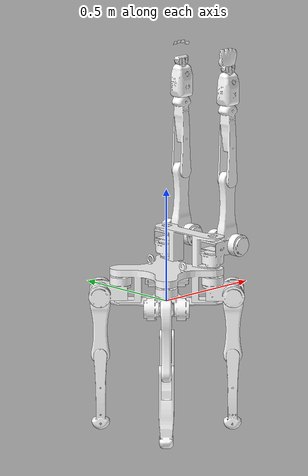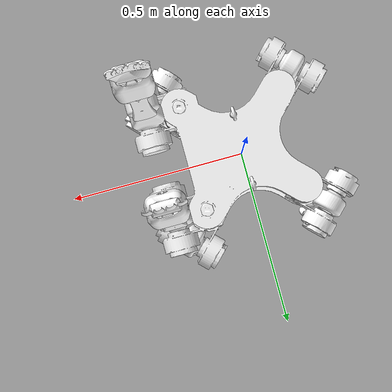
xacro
<?xml version="1.0" ?>
<robot name="moonbot01" xmlns:xacro="http://ros.org/wiki/xacro">

  <!-- include files -->
  <xacro:include filename="$(find moonbot_description)/urdf/yonaka_0722/materials.xacro"/>
  <xacro:include filename="$(find moonbot_description)/urdf/yonaka_0722/moonbot01_macro.xacro"/>

  <xacro:moonbot01/>

</robot>

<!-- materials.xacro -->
<robot name="moonbot01" xmlns:xacro="http://ros.org/wiki/xacro">

  <!-- link rviz colors -->
  <material name="White">
    <color rgba="1 1 1 1"/>
  </material>

  <material name="Black">
    <color rgba="0 0 0 1"/>
  </material>

</robot>

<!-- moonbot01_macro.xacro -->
<robot name="moonbot01" xmlns:xacro="http://ros.org/wiki/xacro">

  <xacro:macro name="moonbot01">

    <!-- include files -->
    <xacro:include filename="$(find moonbot_description)/urdf/yonaka_0722/constant.xacro" />
    <xacro:include filename="$(find moonbot_description)/urdf/yonaka_0722/common.xacro" />
    <xacro:include filename="$(find moonbot_description)/urdf/yonaka_0722/moonbot01_arm_macro.xacro" />
    <xacro:include filename="$(find moonbot_description)/urdf/yonaka_0722/moonbot01_leg_macro.xacro" />
    <xacro:include filename="$(find moonbot_description)/urdf/yonaka_0722/ros2_control.xacro" />

    <!-- base link -->
    <link name="base_link"/>

    <!-- body joint -->
    <joint name="base_to_body" type="fixed">
      <origin xyz="0 0 0" rpy="0 0 0"/>
      <parent link="base_link"/>
      <child link="body_link"/>
    </joint>
    <!-- body link -->
    <xacro:link name="body_link" material="White" mesh="BASE.STL" mass="9.0" ixx="0.01" ixy="0.01" ixz="0.01" iyy="0.01" iyz="0.401" izz="0.401"/>

    <!-- left arm joint -->
    <joint name="base_to_left_arm_base" type="fixed">
      <origin xyz="0.14142 0.14142 0.2475" rpy="0 0 0"/>
      <parent link="base_link"/>
      <child link="left_arm_base_link"/>
    </joint>
    <!-- left arm -->
    <xacro:moonbot01_arm prefix="left_"/>

    <!-- right arm joint -->
    <joint name="base_to_right_arm_base" type="fixed">
      <origin xyz="0.14142 -0.14142 0.2475" rpy="0 0 -0"/>
      <parent link="base_link"/>
      <child link="right_arm_base_link"/>
    </joint>
    <!-- right arm -->
    <xacro:moonbot01_arm prefix="right_"/>

    <!-- forward left leg joint -->
    <joint name="base_to_f_left_leg_base" type="fixed">
      <origin xyz="0.14142 0.14142 0.0395" rpy="0 0 0.7854"/>
      <parent link="base_link"/>
      <child link="f_left_leg_base_link"/>
    </joint>
    <!-- forward left leg -->
    <xacro:moonbot01_leg prefix="f_left_"/>

    <!-- forward right leg joint -->
    <joint name="base_to_f_right_leg_base" type="fixed">
      <origin xyz="0.14142 -0.14142 0.0395" rpy="0 0 -0.7854"/>
      <parent link="base_link"/>
      <child link="f_right_leg_base_link"/>
    </joint>
    <!-- forward right leg -->
    <xacro:moonbot01_leg prefix="f_right_"/>

    <!-- back left leg joint -->
    <joint name="base_to_b_left_leg_base" type="fixed">
      <origin xyz="-0.14142 0.14142 0.0395" rpy="0 0 2.3562"/>
      <parent link="base_link"/>
      <child link="b_left_leg_base_link"/>
    </joint>
    <!-- back left leg -->
    <xacro:moonbot01_leg prefix="b_left_"/>

    <!-- back right leg joint -->
    <joint name="base_to_b_right_leg_base" type="fixed">
      <origin xyz="-0.14142 -0.14142 0.0395" rpy="0 0 -2.3562"/>
      <parent link="base_link"/>
      <child link="b_right_leg_base_link"/>
    </joint>
    <!-- back right leg -->
    <xacro:moonbot01_leg prefix="b_right_"/>

  </xacro:macro>

</robot>

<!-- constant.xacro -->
<robot xmlns:xacro="http://www.ros.org/wiki/xacro">

    <!-- Constants for robot dimensions -->
    <xacro:property name="PI" value="3.1415926535897931"/>

    <!-- Arm -->
    <xacro:property name="aj1_lower_limit" value="${radians( -15)}"/>
    <xacro:property name="aj1_upper_limit" value="${radians( 180)}"/>
    <xacro:property name="aj2_lower_limit" value="${radians(-150)}"/>
    <xacro:property name="aj2_upper_limit" value="${radians( 150)}"/>
    <xacro:property name="aj3_lower_limit" value="${radians(-150)}"/>
    <xacro:property name="aj3_upper_limit" value="${radians( 150)}"/>
    <xacro:property name="aj4_lower_limit" value="${radians(-360)}"/>
    <xacro:property name="aj4_upper_limit" value="${radians( 360)}"/>
    <xacro:property name="aj5_lower_limit" value="${radians(-30)}"/>
    <xacro:property name="aj5_upper_limit" value="${radians( 30)}"/>
    <xacro:property name="aj6_lower_limit" value="${radians(-90)}"/>
    <xacro:property name="aj6_upper_limit" value="${radians( 90)}"/>

    <xacro:property name="aj1_velocity_limit" value="${radians(30)}"/>
    <xacro:property name="aj2_velocity_limit" value="${radians(30)}"/>
    <xacro:property name="aj3_velocity_limit" value="${radians(30)}"/>
    <xacro:property name="aj4_velocity_limit" value="${radians(30)}"/>
    <xacro:property name="aj5_velocity_limit" value="${radians(30)}"/>
    <xacro:property name="aj6_velocity_limit" value="${radians(30)}"/>

    <xacro:property name="atorque_min" value="-1000.0"/>
    <xacro:property name="atorque_max" value="1000.0"/>

    <xacro:property name="aj1_init_pose" value="${PI}"/>
    <xacro:property name="aj2_init_pose" value="1.047"/>
    <xacro:property name="aj3_init_pose" value="-2.356"/>
    <xacro:property name="aj4_init_pose" value="${PI}"/>
    <xacro:property name="aj5_init_pose" value="0.0"/>
    <xacro:property name="aj6_init_pose" value="0.0"/>

    <!-- Leg -->
    <xacro:property name="j1_lower_limit" value="${radians( -90)}"/>
    <xacro:property name="j1_upper_limit" value="${radians(  90)}"/>
    <xacro:property name="j2_lower_limit" value="${radians(-150)}"/>
    <xacro:property name="j2_upper_limit" value="${radians(  10)}"/>
    <xacro:property name="j3_lower_limit" value="${radians(-160)}"/>
    <xacro:property name="j3_upper_limit" value="${radians( 120)}"/>

    <xacro:property name="j1_velocity_limit" value="${radians(180)}"/>
    <xacro:property name="j2_velocity_limit" value="${radians(180)}"/>
    <xacro:property name="j3_velocity_limit" value="${radians(180)}"/>

    <xacro:property name="torque_min" value="-10000.0"/>
    <xacro:property name="torque_max" value="10000.0"/>

    <xacro:property name="j1_init_pose" value="0.0"/>
    <xacro:property name="j2_init_pose" value="-0.96"/>
    <xacro:property name="j3_init_pose" value="1.017"/>

    <!-- foot -->

</robot>

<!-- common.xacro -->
<robot name="moonbot01" xmlns:xacro="http://ros.org/wiki/xacro">

  <xacro:macro name="link" params="name material mesh mass ixx ixy ixz iyy iyz izz xyz:='0 0 0' rpy:='0 0 0'">
    <link name="${name}">
      <visual>
        <origin xyz="${xyz}" rpy="${rpy}"/>
        <material name="${material}"/>
        <geometry>
          <mesh filename="package://moonbot_description/meshesY/${mesh}" scale="0.001 0.001 0.001"/>
        </geometry>
      </visual>
      <collision>
        <origin xyz="${xyz}" rpy="${rpy}"/>
        <geometry>
          <mesh filename="package://moonbot_description/meshesY/${mesh}" scale="0.001 0.001 0.001"/>
        </geometry>
      </collision>
      <inertial>
        <origin xyz="${xyz}" rpy="${rpy}"/>
        <mass value="${mass}"/>
        <inertia ixx="${ixx}" ixy="${ixy}" ixz="${ixz}" iyy="${iyy}" iyz="${iyz}" izz="${izz}"/>
      </inertial>
    </link>
  </xacro:macro>

</robot>

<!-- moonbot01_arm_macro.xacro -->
<robot name="moonbot01" xmlns:xacro="http://ros.org/wiki/xacro">

  <xacro:macro name="moonbot01_arm" params="prefix">

    <!-- include files -->
    <xacro:include filename="$(find moonbot_description)/urdf/yonaka_0722/constant.xacro" />
    <xacro:include filename="$(find moonbot_description)/urdf/yonaka_0722/common.xacro" />

    <!-- base link -->
    <link name="${prefix}arm_base_link">
      <inertial>
        <mass value="0.001"/>
        <inertia ixx="0.000000" ixy="0.000000" ixz="0.000000" iyy="0.000000" iyz="0.000000" izz="0.000000"/>
      </inertial>
    </link>

    <!-- joint 1 -->
    <joint name="${prefix}arm_joint1" type="revolute">
      <axis xyz="0 0 1" rpy="0 0 0"/>
      <xacro:if value="${prefix == 'right_'}">
        <limit effort="1000.0" lower="${-aj1_upper_limit}" upper="${-aj1_lower_limit}" velocity="${-aj1_velocity_limit}"/>
      </xacro:if>
      <xacro:if value="${prefix == 'left_'}">
        <limit effort="1000.0" lower="${aj1_lower_limit}" upper="${aj1_upper_limit}" velocity="${aj1_velocity_limit}"/>
      </xacro:if>
      <origin xyz="0 0.0 0.0" rpy="0 0 0"/>
      <parent link="${prefix}arm_base_link"/>
      <child link="${prefix}arm_link1"/>
    </joint>

    <!-- link 1 -->
    <xacro:link name="${prefix}arm_link1" material="White" mesh="M_Assy_arm1.STL" mass="3.550" ixx="0.1" ixy="0.1" ixz="0.1" iyy="0.1" iyz="0.1" izz="0.1"/>

    <!-- joint 2 -->
    <joint name="${prefix}arm_joint2" type="revolute">
      <axis xyz="0 1 0" rpy="0 0 0"/>
      <limit effort="1000.0" lower="${aj2_lower_limit}" upper="${aj2_upper_limit}" velocity="${aj2_velocity_limit}"/>
      <origin xyz="0.09 0.0 -0.0" rpy="0 0 0"/>
      <parent link="${prefix}arm_link1"/>
      <child link="${prefix}arm_link2"/>
    </joint>

    <!-- link 2 -->
    <xacro:link name="${prefix}arm_link2" material="White" mesh="M_Assy_arm2.STL" mass="0.990" ixx="0.1" ixy="0.1" ixz="0.1" iyy="0.1" iyz="0.1" izz="0.1"/>

    <!-- joint 3 -->
    <joint name="${prefix}arm_joint3" type="revolute">
      <axis xyz="0 1 0" rpy="0 0 0"/>
      <limit effort="1000.0" lower="${aj3_lower_limit}" upper="${aj3_upper_limit}" velocity="${aj3_velocity_limit}"/>
      <origin xyz="0.0 0.0 0.28" rpy="0 0 0"/>
      <parent link="${prefix}arm_link2"/>
      <child link="${prefix}arm_link3"/>
    </joint>

    <!-- link 3 -->
    <xacro:link name="${prefix}arm_link3" material="White" mesh="M_Assy_arm3.STL" mass="0.43" ixx="0.1" ixy="0.1" ixz="0.1" iyy="0.1" iyz="0.1" izz="0.1"/>

    <!-- joint 4 -->
    <joint name="${prefix}arm_joint4" type="revolute">
      <axis xyz="0 0 1" rpy="0 0 0"/>
      <limit effort="1000.0" lower="${aj4_lower_limit}" upper="${aj4_upper_limit}" velocity="${aj4_velocity_limit}"/>
      <origin xyz="0.0 0.0 0.33" rpy="0 0 0"/>
      <parent link="${prefix}arm_link3"/>
      <child link="${prefix}arm_link4"/>
    </joint>

    <!-- link 4 -->
    <xacro:if value="${prefix == 'left_'}">
      <xacro:link name="${prefix}arm_link4" material="White" mesh="HAND_L1.STL" mass="0.6" ixx="0.1" ixy="0.1" ixz="0.1" iyy="0.1" iyz="0.1" izz="0.1"/>
    </xacro:if>
    <xacro:if value="${prefix == 'right_'}">
      <xacro:link name="${prefix}arm_link4" material="White" mesh="HAND_R1.STL" mass="0.6" ixx="0.1" ixy="0.1" ixz="0.1" iyy="0.1" iyz="0.1" izz="0.1"/>
    </xacro:if>

    <!-- joint 5 -->
    <joint name="${prefix}arm_joint5" type="revolute">
      <axis xyz="0 1 0" rpy="0 0 0"/>
      <limit effort="1000.0" lower="${aj5_lower_limit}" upper="${aj5_upper_limit}" velocity="${aj5_velocity_limit}"/>
      <origin xyz="0.0 0.0 0.165" rpy="0 0 0"/>
      <parent link="${prefix}arm_link4"/>
      <child link="${prefix}arm_link5"/>
    </joint>

    <!-- link 5 -->
    <xacro:if value="${prefix == 'left_'}">
      <xacro:link name="${prefix}arm_link5" material="White" mesh="HAND_L2.STL" mass="0.08" ixx="0.1" ixy="0.1" ixz="0.1" iyy="0.1" iyz="0.1" izz="0.1" xyz='0 0 -0.165'/>
    </xacro:if>
    <xacro:if value="${prefix == 'right_'}">
      <xacro:link name="${prefix}arm_link5" material="White" mesh="HAND_R2.STL" mass="0.08" ixx="0.1" ixy="0.1" ixz="0.1" iyy="0.1" iyz="0.1" izz="0.1" xyz='0 0 -0.165'/>
    </xacro:if>

    <!-- joint 6 -->
    <joint name="${prefix}arm_joint6" type="revolute">
      <axis xyz="1 0 0" rpy="0 0 0"/>
      <limit effort="1000.0" lower="${aj6_lower_limit}" upper="${aj6_upper_limit}" velocity="${aj6_velocity_limit}"/>
      <origin xyz="0.0 0.0 0.0" rpy="0 0 0"/>
      <parent link="${prefix}arm_link5"/>
      <child link="${prefix}arm_link6"/>
    </joint>

    <!-- link 6 -->
    <xacro:if value="${prefix == 'left_'}">
      <xacro:link name="${prefix}arm_link6" material="White" mesh="HAND_L3.STL" mass="0.08" ixx="0.1" ixy="0.1" ixz="0.1" iyy="0.1" iyz="0.1" izz="0.1" xyz='0 0 -0.165'/>
    </xacro:if>
    <xacro:if value="${prefix == 'right_'}">
      <xacro:link name="${prefix}arm_link6" material="White" mesh="HAND_R3.STL" mass="0.08" ixx="0.1" ixy="0.1" ixz="0.1" iyy="0.1" iyz="0.1" izz="0.1" xyz='0 0 -0.165'/>
    </xacro:if>

    <!-- finger link -->

    <!-- finger joint -->

  </xacro:macro>

</robot>

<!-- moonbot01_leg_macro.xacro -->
<robot name="moonbot01" xmlns:xacro="http://ros.org/wiki/xacro">

  <xacro:macro name="moonbot01_leg" params="prefix">

    <!-- include files -->
    <xacro:include filename="$(find moonbot_description)/urdf/yonaka_0722/constant.xacro" />
    <xacro:include filename="$(find moonbot_description)/urdf/yonaka_0722/common.xacro" />

    <!-- base link -->
    <link name="${prefix}leg_base_link">
      <inertial>
        <mass value="0.001"/>
        <inertia ixx="0.000000" ixy="0.000000" ixz="0.000000" iyy="0.000000" iyz="0.000000" izz="0.000000"/>
      </inertial>
    </link>

    <!-- joint 1 -->
    <joint name="${prefix}leg_joint1" type="revolute">
      <axis xyz="0 0 1" rpy="0 0 0"/>
      <limit effort="1000.0" lower="${j1_lower_limit}" upper="${j1_upper_limit}" velocity="${j1_velocity_limit}"/>
      <origin xyz="0 0.0 0.0" rpy="0 0 0"/>
      <parent link="${prefix}leg_base_link"/>
      <child link="${prefix}leg_link1"/>
    </joint>
    <!-- link 1 -->
    <xacro:link name="${prefix}leg_link1" material="White" mesh="M_Assy1.STL" mass="3.550" ixx="0.1" ixy="0.1" ixz="0.1" iyy="0.1" iyz="0.1" izz="0.1"/>

    <!-- joint 2 -->
    <joint name="${prefix}leg_joint2" type="revolute">
      <axis xyz="0 1 0" rpy="0 0 0"/>
      <limit effort="1000.0" lower="${j2_lower_limit}" upper="${j2_upper_limit}" velocity="${j2_velocity_limit}"/>
      <origin xyz="0.09 0.0 -0.0" rpy="0 0 0"/>
      <parent link="${prefix}leg_link1"/>
      <child link="${prefix}leg_link2"/>
    </joint>

    <!-- link 2 -->
    <xacro:link name="${prefix}leg_link2" material="White" mesh="M_Assy2.STL" mass="0.990" ixx="0.1" ixy="0.1" ixz="0.1" iyy="0.1" iyz="0.1" izz="0.1"/>

    <!-- joint 3 -->
    <joint name="${prefix}leg_joint3" type="revolute">
      <axis xyz="0 1 0" rpy="0 0 0"/>
      <limit effort="1000.0" lower="${j3_lower_limit}" upper="${j3_upper_limit}" velocity="${j3_velocity_limit}"/>
      <origin xyz="0.0 0 -0.28" rpy="0 0 0"/>
      <parent link="${prefix}leg_link2"/>
      <child link="${prefix}leg_link3"/>
    </joint>

    <!-- link 3 -->
    <xacro:link name="${prefix}leg_link3" material="White" mesh="M_Assy3.STL" mass="0.430" ixx="0.1" ixy="0.1" ixz="0.1" iyy="0.1" iyz="0.1" izz="0.1"/>

  </xacro:macro>

</robot>
